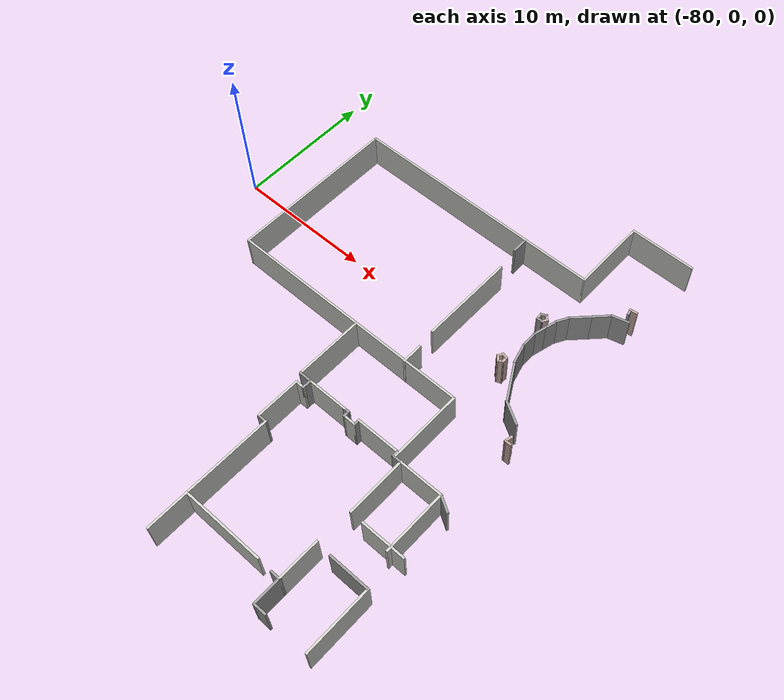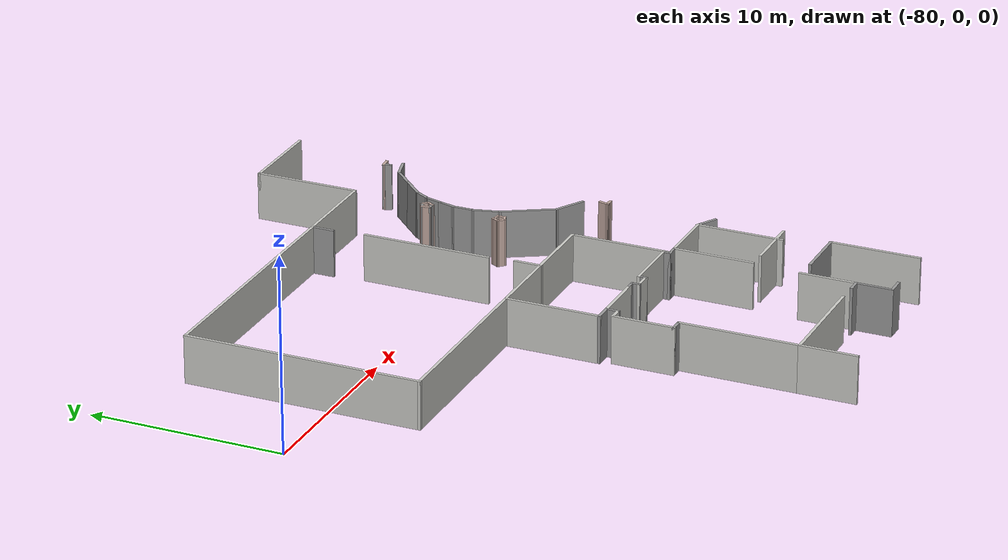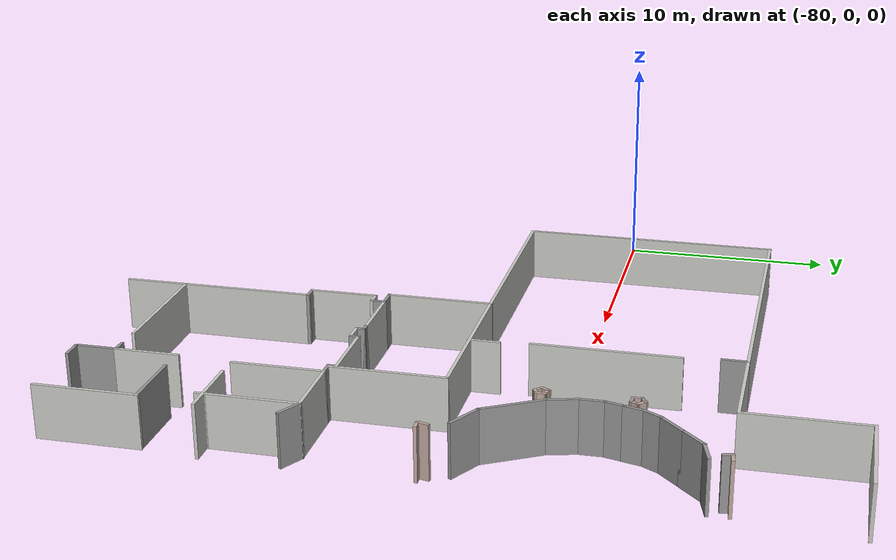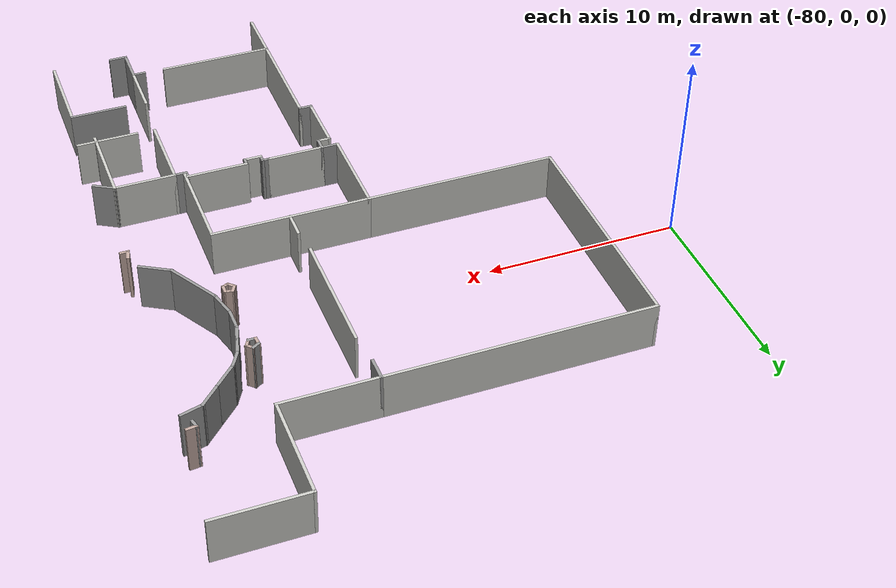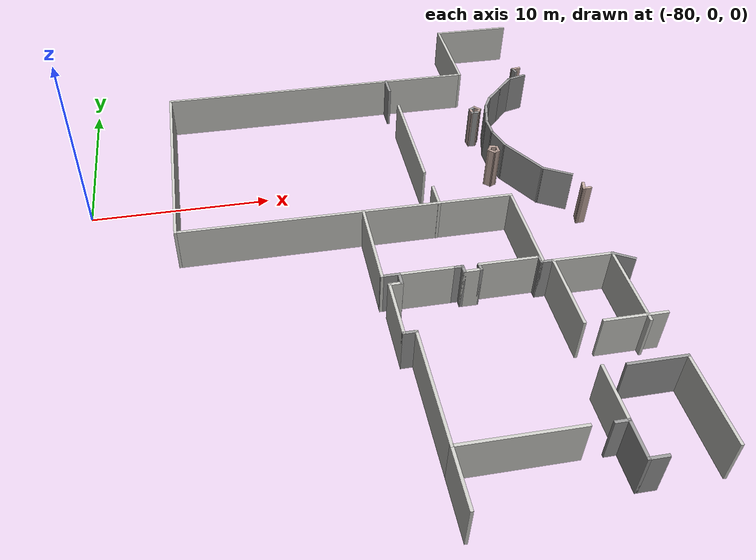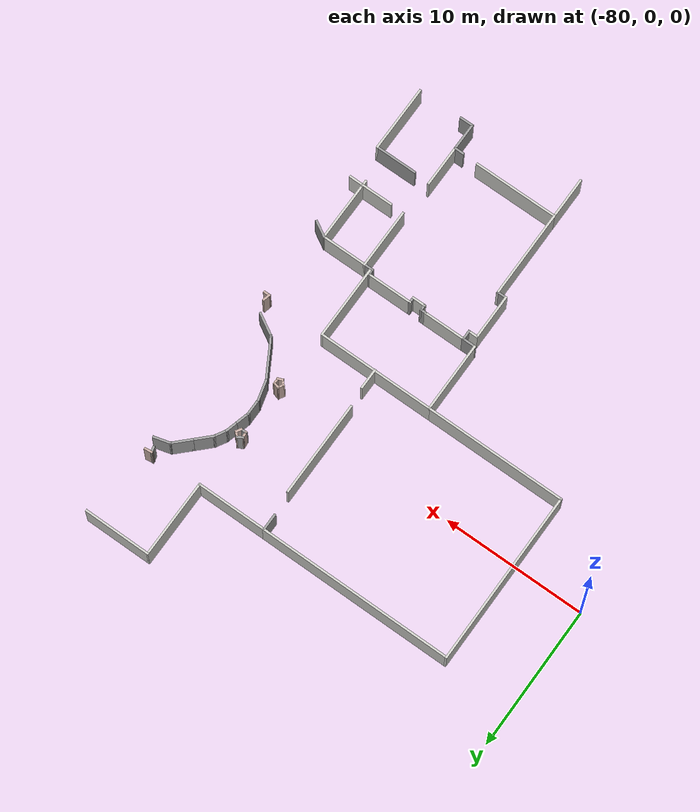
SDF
<sdf version="1.7">
 <model name="TD_n1">
  <pose>-37.6178 -12.8947 0 0 -0 0</pose>
  <link name="Wall_100">
   <collision name="Wall_100_Collision">
    <geometry><box><size>6 0.15 2.5</size></box></geometry>
    <pose>0 0 1.25 0 -0 0</pose>
   </collision>
   <visual name="Wall_100_Visual">
    <pose>0 0 1.25 0 -0 0</pose>
    <geometry><box><size>6 0.15 2.5</size></box></geometry>
    <material>
     <script><uri>file://media/materials/scripts/gazebo.material</uri><name>Gazebo/CeilingTiled</name></script>
     <ambient>1 1 1 1</ambient>
    </material>
    <meta><layer>0</layer></meta>
   </visual>
   <pose>-23.9178 -6.375 0 0 -0 0</pose>
  </link>
  <link name="Wall_102">
   <collision name="Wall_102_Collision">
    <geometry><box><size>0.75 0.15 2.5</size></box></geometry>
    <pose>0 0 1.25 0 -0 0</pose>
   </collision>
   <visual name="Wall_102_Visual">
    <pose>0 0 1.25 0 -0 0</pose>
    <geometry><box><size>0.75 0.15 2.5</size></box></geometry>
    <material>
     <script><uri>file://media/materials/scripts/gazebo.material</uri><name>Gazebo/Grey</name></script>
     <ambient>1 1 1 1</ambient>
    </material>
    <meta><layer>0</layer></meta>
   </visual>
   <pose>-19.5646 -6.4151 0 0 -0 0</pose>
  </link>
  <link name="Wall_103">
   <collision name="Wall_103_Collision">
    <geometry><box><size>2 0.15 2.5</size></box></geometry>
    <pose>0 0 1.25 0 -0 0</pose>
   </collision>
   <visual name="Wall_103_Visual">
    <pose>0 0 1.25 0 -0 0</pose>
    <geometry><box><size>2 0.15 2.5</size></box></geometry>
    <material>
     <script><uri>file://media/materials/scripts/gazebo.material</uri><name>Gazebo/Grey</name></script>
     <ambient>1 1 1 1</ambient>
    </material>
    <meta><layer>0</layer></meta>
   </visual>
   <pose>-19.2646 -7.3401 0 0 -0 -1.5708</pose>
  </link>
  <link name="Wall_104">
   <collision name="Wall_104_Collision">
    <geometry><box><size>1 0.15 2.5</size></box></geometry>
    <pose>0 0 1.25 0 -0 0</pose>
   </collision>
   <visual name="Wall_104_Visual">
    <pose>0 0 1.25 0 -0 0</pose>
    <geometry><box><size>1 0.15 2.5</size></box></geometry>
    <material>
     <script><uri>file://media/materials/scripts/gazebo.material</uri><name>Gazebo/Grey</name></script>
     <ambient>1 1 1 1</ambient>
    </material>
    <meta><layer>0</layer></meta>
   </visual>
   <pose>-18.8396 -8.2651 0 0 -0 0</pose>
  </link>
  <link name="Wall_118">
   <collision name="Wall_118_Collision">
    <geometry><box><size>6.25 0.15 2.5</size></box></geometry>
    <pose>0 0 1.25 0 -0 0</pose>
   </collision>
   <visual name="Wall_118_Visual">
    <pose>0 0 1.25 0 -0 0</pose>
    <geometry><box><size>6.25 0.15 2.5</size></box></geometry>
    <material>
     <script><uri>file://media/materials/scripts/gazebo.material</uri><name>Gazebo/CeilingTiled</name></script>
     <ambient>1 1 1 1</ambient>
    </material>
    <meta><layer>0</layer></meta>
   </visual>
   <pose>-26.8428 -3.325 0 0 -0 1.5708</pose>
  </link>
  <link name="Wall_119">
   <collision name="Wall_119_Collision">
    <geometry><box><size>0.75 0.15 2.5</size></box></geometry>
    <pose>0 0 1.25 0 -0 0</pose>
   </collision>
   <visual name="Wall_119_Visual">
    <pose>0 0 1.25 0 -0 0</pose>
    <geometry><box><size>0.75 0.15 2.5</size></box></geometry>
    <material>
     <script><uri>file://media/materials/scripts/gazebo.material</uri><name>Gazebo/Grey</name></script>
     <ambient>1 1 1 1</ambient>
    </material>
    <meta><layer>0</layer></meta>
   </visual>
   <pose>-27.1428 -0.275001 0 0 -0 3.14159</pose>
  </link>
  <link name="Wall_120">
   <collision name="Wall_120_Collision">
    <geometry><box><size>3.25 0.15 2.5</size></box></geometry>
    <pose>0 0 1.25 0 -0 0</pose>
   </collision>
   <visual name="Wall_120_Visual">
    <pose>0 0 1.25 0 -0 0</pose>
    <geometry><box><size>3.25 0.15 2.5</size></box></geometry>
    <material>
     <script><uri>file://media/materials/scripts/gazebo.material</uri><name>Gazebo/CeilingTiled</name></script>
     <ambient>1 1 1 1</ambient>
    </material>
    <meta><layer>0</layer></meta>
   </visual>
   <pose>-27.4428 1.275 0 0 -0 1.5708</pose>
  </link>
  <link name="Wall_121">
   <collision name="Wall_121_Collision">
    <geometry><box><size>0.75 0.15 2.5</size></box></geometry>
    <pose>0 0 1.25 0 -0 0</pose>
   </collision>
   <visual name="Wall_121_Visual">
    <pose>0 0 1.25 0 -0 0</pose>
    <geometry><box><size>0.75 0.15 2.5</size></box></geometry>
    <material>
     <script><uri>file://media/materials/scripts/gazebo.material</uri><name>Gazebo/CeilingTiled</name></script>
     <ambient>1 1 1 1</ambient>
    </material>
    <meta><layer>0</layer></meta>
   </visual>
   <pose>-27.1428 2.825 0 0 -0 0</pose>
  </link>
  <link name="Wall_122">
   <collision name="Wall_122_Collision">
    <geometry><box><size>0.75 0.15 2.5</size></box></geometry>
    <pose>0 0 1.25 0 -0 0</pose>
   </collision>
   <visual name="Wall_122_Visual">
    <pose>0 0 1.25 0 -0 0</pose>
    <geometry><box><size>0.75 0.15 2.5</size></box></geometry>
    <material>
     <script><uri>file://media/materials/scripts/gazebo.material</uri><name>Gazebo/Grey</name></script>
     <ambient>1 1 1 1</ambient>
    </material>
    <meta><layer>0</layer></meta>
   </visual>
   <pose>-26.8428 3.125 0 0 -0 1.5708</pose>
  </link>
  <link name="Wall_123">
   <collision name="Wall_123_Collision">
    <geometry><box><size>3 0.15 2.5</size></box></geometry>
    <pose>0 0 1.25 0 -0 0</pose>
   </collision>
   <visual name="Wall_123_Visual">
    <pose>0 0 1.25 0 -0 0</pose>
    <geometry><box><size>3 0.15 2.5</size></box></geometry>
    <material>
     <script><uri>file://media/materials/scripts/gazebo.material</uri><name>Gazebo/CeilingTiled</name></script>
     <ambient>1 1 1 1</ambient>
    </material>
    <meta><layer>0</layer></meta>
   </visual>
   <pose>-25.4178 3.425 0 0 -0 0</pose>
  </link>
  <link name="Wall_125">
   <collision name="Wall_125_Collision">
    <geometry><box><size>0.5 0.15 2.5</size></box></geometry>
    <pose>0 0 1.25 0 -0 0</pose>
   </collision>
   <visual name="Wall_125_Visual">
    <pose>0 0 1.25 0 -0 0</pose>
    <geometry><box><size>0.5 0.15 2.5</size></box></geometry>
    <material>
     <script><uri>file://media/materials/scripts/gazebo.material</uri><name>Gazebo/Grey</name></script>
     <ambient>1 1 1 1</ambient>
    </material>
    <meta><layer>0</layer></meta>
   </visual>
   <pose>-23.8178 3.425 0 0 -0 0</pose>
  </link>
  <link name="Wall_126">
   <collision name="Wall_126_Collision">
    <geometry><box><size>0.5 0.15 2.5</size></box></geometry>
    <pose>0 0 1.25 0 -0 0</pose>
   </collision>
   <visual name="Wall_126_Visual">
    <pose>0 0 1.25 0 -0 0</pose>
    <geometry><box><size>0.5 0.15 2.5</size></box></geometry>
    <material>
     <script><uri>file://media/materials/scripts/gazebo.material</uri><name>Gazebo/Grey</name></script>
     <ambient>1 1 1 1</ambient>
    </material>
    <meta><layer>0</layer></meta>
   </visual>
   <pose>-23.6428 3.25 0 0 -0 -1.5708</pose>
  </link>
  <link name="Wall_127">
   <collision name="Wall_127_Collision">
    <geometry><box><size>1 0.15 2.5</size></box></geometry>
    <pose>0 0 1.25 0 -0 0</pose>
   </collision>
   <visual name="Wall_127_Visual">
    <pose>0 0 1.25 0 -0 0</pose>
    <geometry><box><size>1 0.15 2.5</size></box></geometry>
    <material>
     <script><uri>file://media/materials/scripts/gazebo.material</uri><name>Gazebo/CeilingTiled</name></script>
     <ambient>1 1 1 1</ambient>
    </material>
    <meta><layer>0</layer></meta>
   </visual>
   <pose>-23.2178 3.075 0 0 -0 0</pose>
  </link>
  <link name="Wall_128">
   <collision name="Wall_128_Collision">
    <geometry><box><size>0.5 0.15 2.5</size></box></geometry>
    <pose>0 0 1.25 0 -0 0</pose>
   </collision>
   <visual name="Wall_128_Visual">
    <pose>0 0 1.25 0 -0 0</pose>
    <geometry><box><size>0.5 0.15 2.5</size></box></geometry>
    <material>
     <script><uri>file://media/materials/scripts/gazebo.material</uri><name>Gazebo/Grey</name></script>
     <ambient>1 1 1 1</ambient>
    </material>
    <meta><layer>0</layer></meta>
   </visual>
   <pose>-22.7928 3.25 0 0 -0 1.5708</pose>
  </link>
  <link name="Wall_129">
   <collision name="Wall_129_Collision">
    <geometry><box><size>3.25 0.15 2.5</size></box></geometry>
    <pose>0 0 1.25 0 -0 0</pose>
   </collision>
   <visual name="Wall_129_Visual">
    <pose>0 0 1.25 0 -0 0</pose>
    <geometry><box><size>3.25 0.15 2.5</size></box></geometry>
    <material>
     <script><uri>file://media/materials/scripts/gazebo.material</uri><name>Gazebo/CeilingTiled</name></script>
     <ambient>1 1 1 1</ambient>
    </material>
    <meta><layer>0</layer></meta>
   </visual>
   <pose>-21.2428 3.425 0 0 -0 0</pose>
  </link>
  <link name="Wall_130">
   <collision name="Wall_130_Collision">
    <geometry><box><size>0.5 0.15 2.5</size></box></geometry>
    <pose>0 0 1.25 0 -0 0</pose>
   </collision>
   <visual name="Wall_130_Visual">
    <pose>0 0 1.25 0 -0 0</pose>
    <geometry><box><size>0.5 0.15 2.5</size></box></geometry>
    <material>
     <script><uri>file://media/materials/scripts/gazebo.material</uri><name>Gazebo/Grey</name></script>
     <ambient>1 1 1 1</ambient>
    </material>
    <meta><layer>0</layer></meta>
   </visual>
   <pose>-19.6928 3.25 0 0 -0 -1.5708</pose>
  </link>
  <link name="Wall_131">
   <collision name="Wall_131_Collision">
    <geometry><box><size>0.75 0.15 2.5</size></box></geometry>
    <pose>0 0 1.25 0 -0 0</pose>
   </collision>
   <visual name="Wall_131_Visual">
    <pose>0 0 1.25 0 -0 0</pose>
    <geometry><box><size>0.75 0.15 2.5</size></box></geometry>
    <material>
     <script><uri>file://media/materials/scripts/gazebo.material</uri><name>Gazebo/Grey</name></script>
     <ambient>1 1 1 1</ambient>
    </material>
    <meta><layer>0</layer></meta>
   </visual>
   <pose>-19.3928 3.075 0 0 -0 0</pose>
  </link>
  <link name="Wall_132">
   <collision name="Wall_132_Collision">
    <geometry><box><size>4.25 0.15 2.5</size></box></geometry>
    <pose>0 0 1.25 0 -0 0</pose>
   </collision>
   <visual name="Wall_132_Visual">
    <pose>0 0 1.25 0 -0 0</pose>
    <geometry><box><size>4.25 0.15 2.5</size></box></geometry>
    <material>
     <script><uri>file://media/materials/scripts/gazebo.material</uri><name>Gazebo/CeilingTiled</name></script>
     <ambient>1 1 1 1</ambient>
    </material>
    <meta><layer>0</layer></meta>
   </visual>
   <pose>-19.0928 1.025 0 0 -0 -1.5708</pose>
  </link>
  <link name="Wall_134">
   <collision name="Wall_134_Collision">
    <geometry><box><size>3.25 0.15 2.5</size></box></geometry>
    <pose>0 0 1.25 0 -0 0</pose>
   </collision>
   <visual name="Wall_134_Visual">
    <pose>0 0 1.25 0 -0 0</pose>
    <geometry><box><size>3.25 0.15 2.5</size></box></geometry>
    <material>
     <script><uri>file://media/materials/scripts/gazebo.material</uri><name>Gazebo/CeilingTiled</name></script>
     <ambient>1 1 1 1</ambient>
    </material>
    <meta><layer>0</layer></meta>
   </visual>
   <pose>-17.5428 3.075 0 0 -0 0</pose>
  </link>
  <link name="Wall_135">
   <collision name="Wall_135_Collision">
    <geometry><box><size>1.25 0.15 2.5</size></box></geometry>
    <pose>0 0 1.25 0 -0 0</pose>
   </collision>
   <visual name="Wall_135_Visual">
    <pose>0 0 1.25 0 -0 0</pose>
    <geometry><box><size>1.25 0.15 2.5</size></box></geometry>
    <material>
     <script><uri>file://media/materials/scripts/gazebo.material</uri><name>Gazebo/Grey</name></script>
     <ambient>1 1 1 1</ambient>
    </material>
    <meta><layer>0</layer></meta>
   </visual>
   <pose>-15.5165 2.8 0 0 -0 -0.523599</pose>
  </link>
  <link name="Wall_137">
   <collision name="Wall_137_Collision">
    <geometry><box><size>3.25 0.15 2.5</size></box></geometry>
    <pose>0 0 1.25 0 -0 0</pose>
   </collision>
   <visual name="Wall_137_Visual">
    <pose>0 0 1.25 0 -0 0</pose>
    <geometry><box><size>3.25 0.15 2.5</size></box></geometry>
    <material>
     <script><uri>file://media/materials/scripts/gazebo.material</uri><name>Gazebo/CeilingTiled</name></script>
     <ambient>1 1 1 1</ambient>
    </material>
    <meta><layer>0</layer></meta>
   </visual>
   <pose>-16.5902 -1.075 0 0 -0 3.14159</pose>
  </link>
  <link name="Wall_139">
   <collision name="Wall_139_Collision">
    <geometry><box><size>4.25 0.15 2.5</size></box></geometry>
    <pose>0 0 1.25 0 -0 0</pose>
   </collision>
   <visual name="Wall_139_Visual">
    <pose>0 0 1.25 0 -0 0</pose>
    <geometry><box><size>4.25 0.15 2.5</size></box></geometry>
    <material>
     <script><uri>file://media/materials/scripts/gazebo.material</uri><name>Gazebo/CeilingTiled</name></script>
     <ambient>1 1 1 1</ambient>
    </material>
    <meta><layer>0</layer></meta>
   </visual>
   <pose>-15.9928 1.025 0 0 -0 -1.5708</pose>
  </link>
  <link name="Wall_140">
   <collision name="Wall_140_Collision">
    <geometry><box><size>0.5 0.15 2.5</size></box></geometry>
    <pose>0 0 1.25 0 -0 0</pose>
   </collision>
   <visual name="Wall_140_Visual">
    <pose>0 0 1.25 0 -0 0</pose>
    <geometry><box><size>0.5 0.15 2.5</size></box></geometry>
    <material>
     <script><uri>file://media/materials/scripts/gazebo.material</uri><name>Gazebo/CeilingTiled</name></script>
     <ambient>1 1 1 1</ambient>
    </material>
    <meta><layer>0</layer></meta>
   </visual>
   <pose>-15.9928 -1.2 0 0 -0 -1.5708</pose>
  </link>
  <link name="Wall_142">
   <collision name="Wall_142_Collision">
    <geometry><box><size>3 0.15 2.5</size></box></geometry>
    <pose>0 0 1.25 0 -0 0</pose>
   </collision>
   <visual name="Wall_142_Visual">
    <pose>0 0 1.25 0 -0 0</pose>
    <geometry><box><size>3 0.15 2.5</size></box></geometry>
    <material>
     <script><uri>file://media/materials/scripts/gazebo.material</uri><name>Gazebo/CeilingTiled</name></script>
     <ambient>1 1 1 1</ambient>
    </material>
    <meta><layer>0</layer></meta>
   </visual>
   <pose>-19.2646 -4.9901 0 0 -0 1.5708</pose>
  </link>
  <link name="Wall_145">
   <collision name="Wall_145_Collision">
    <geometry><box><size>3 0.15 2.5</size></box></geometry>
    <pose>0 0 1.25 0 -0 0</pose>
   </collision>
   <visual name="Wall_145_Visual">
    <pose>0 0 1.25 0 -0 0</pose>
    <geometry><box><size>3 0.15 2.5</size></box></geometry>
    <material>
     <script><uri>file://media/materials/scripts/gazebo.material</uri><name>Gazebo/Grey</name></script>
     <ambient>1 1 1 1</ambient>
    </material>
    <meta><layer>0</layer></meta>
   </visual>
   <pose>-16.6986 -3.64843 0 0 -0 0</pose>
  </link>
  <link name="Wall_146">
   <collision name="Wall_146_Collision">
    <geometry><box><size>4.75 0.15 2.5</size></box></geometry>
    <pose>0 0 1.25 0 -0 0</pose>
   </collision>
   <visual name="Wall_146_Visual">
    <pose>0 0 1.25 0 -0 0</pose>
    <geometry><box><size>4.75 0.15 2.5</size></box></geometry>
    <material>
     <script><uri>file://media/materials/scripts/gazebo.material</uri><name>Gazebo/CeilingTiled</name></script>
     <ambient>1 1 1 1</ambient>
    </material>
    <meta><layer>0</layer></meta>
   </visual>
   <pose>-15.2736 -5.94843 0 0 -0 -1.5708</pose>
  </link>
  <link name="Wall_165">
   <collision name="Wall_165_Collision">
    <geometry><box><size>1 0.15 2.5</size></box></geometry>
    <pose>0 0 1.25 0 -0 0</pose>
   </collision>
   <visual name="Wall_165_Visual">
    <pose>0 0 1.25 0 -0 0</pose>
    <geometry><box><size>1 0.15 2.5</size></box></geometry>
    <material>
     <script><uri>file://media/materials/scripts/gazebo.material</uri><name>Gazebo/Grey</name></script>
     <ambient>1 1 1 1</ambient>
    </material>
    <meta><layer>0</layer></meta>
   </visual>
   <pose>-27.2678 3.425 0 0 -0 3.14159</pose>
  </link>
  <link name="Wall_166">
   <collision name="Wall_166_Collision">
    <geometry><box><size>5 0.15 2.5</size></box></geometry>
    <pose>0 0 1.25 0 -0 0</pose>
   </collision>
   <visual name="Wall_166_Visual">
    <pose>0 0 1.25 0 -0 0</pose>
    <geometry><box><size>5 0.15 2.5</size></box></geometry>
    <material>
     <script><uri>file://media/materials/scripts/gazebo.material</uri><name>Gazebo/CeilingTiled</name></script>
     <ambient>1 1 1 1</ambient>
    </material>
    <meta><layer>0</layer></meta>
   </visual>
   <pose>-27.6928 5.85 0 0 -0 1.5708</pose>
  </link>
  <link name="Wall_167">
   <collision name="Wall_167_Collision">
    <geometry><box><size>8.25 0.15 2.5</size></box></geometry>
    <pose>0 0 1.25 0 -0 0</pose>
   </collision>
   <visual name="Wall_167_Visual">
    <pose>0 0 1.25 0 -0 0</pose>
    <geometry><box><size>8.25 0.15 2.5</size></box></geometry>
    <material>
     <script><uri>file://media/materials/scripts/gazebo.material</uri><name>Gazebo/CeilingTiled</name></script>
     <ambient>1 1 1 1</ambient>
    </material>
    <meta><layer>0</layer></meta>
   </visual>
   <pose>-23.6428 8.275 0 0 -0 0</pose>
  </link>
  <link name="Wall_168">
   <collision name="Wall_168_Collision">
    <geometry><box><size>5.25 0.15 2.5</size></box></geometry>
    <pose>0 0 1.25 0 -0 0</pose>
   </collision>
   <visual name="Wall_168_Visual">
    <pose>0 0 1.25 0 -0 0</pose>
    <geometry><box><size>5.25 0.15 2.5</size></box></geometry>
    <material>
     <script><uri>file://media/materials/scripts/gazebo.material</uri><name>Gazebo/CeilingTiled</name></script>
     <ambient>1 1 1 1</ambient>
    </material>
    <meta><layer>0</layer></meta>
   </visual>
   <pose>-19.5928 5.725 0 0 -0 -1.5708</pose>
  </link>
  <link name="Wall_170">
   <collision name="Wall_170_Collision">
    <geometry><box><size>10 0.15 2.5</size></box></geometry>
    <pose>0 0 1.25 0 -0 0</pose>
   </collision>
   <visual name="Wall_170_Visual">
    <pose>0 0 1.25 0 -0 0</pose>
    <geometry><box><size>10 0.15 2.5</size></box></geometry>
    <material>
     <script><uri>file://media/materials/scripts/gazebo.material</uri><name>Gazebo/CeilingTiled</name></script>
     <ambient>1 1 1 1</ambient>
    </material>
    <meta><layer>0</layer></meta>
   </visual>
   <pose>-32.6178 8.275 0 0 -0 3.14159</pose>
  </link>
  <link name="Wall_171">
   <collision name="Wall_171_Collision">
    <geometry><box><size>12.25 0.15 2.5</size></box></geometry>
    <pose>0 0 1.25 0 -0 0</pose>
   </collision>
   <visual name="Wall_171_Visual">
    <pose>0 0 1.25 0 -0 0</pose>
    <geometry><box><size>12.25 0.15 2.5</size></box></geometry>
    <material>
     <script><uri>file://media/materials/scripts/gazebo.material</uri><name>Gazebo/CeilingTiled</name></script>
     <ambient>1 1 1 1</ambient>
    </material>
    <meta><layer>0</layer></meta>
   </visual>
   <pose>-37.5428 14.325 0 0 -0 1.5708</pose>
  </link>
  <link name="Wall_172">
   <collision name="Wall_172_Collision">
    <geometry><box><size>13.75 0.15 2.5</size></box></geometry>
    <pose>0 0 1.25 0 -0 0</pose>
   </collision>
   <visual name="Wall_172_Visual">
    <pose>0 0 1.25 0 -0 0</pose>
    <geometry><box><size>13.75 0.15 2.5</size></box></geometry>
    <material>
     <script><uri>file://media/materials/scripts/gazebo.material</uri><name>Gazebo/CeilingTiled</name></script>
     <ambient>1 1 1 1</ambient>
    </material>
    <meta><layer>0</layer></meta>
   </visual>
   <pose>-30.7428 20.375 0 0 -0 0</pose>
  </link>
  <link name="Wall_173">
   <collision name="Wall_173_Collision">
    <geometry><box><size>1.25 0.15 2.5</size></box></geometry>
    <pose>0 0 1.25 0 -0 0</pose>
   </collision>
   <visual name="Wall_173_Visual">
    <pose>0 0 1.25 0 -0 0</pose>
    <geometry><box><size>1.25 0.15 2.5</size></box></geometry>
    <material>
     <script><uri>file://media/materials/scripts/gazebo.material</uri><name>Gazebo/Grey</name></script>
     <ambient>1 1 1 1</ambient>
    </material>
    <meta><layer>0</layer></meta>
   </visual>
   <pose>-23.9428 19.825 0 0 -0 -1.5708</pose>
  </link>
  <link name="Wall_175">
   <collision name="Wall_175_Collision">
    <geometry><box><size>6.75 0.15 2.5</size></box></geometry>
    <pose>0 0 1.25 0 -0 0</pose>
   </collision>
   <visual name="Wall_175_Visual">
    <pose>0 0 1.25 0 -0 0</pose>
    <geometry><box><size>6.75 0.15 2.5</size></box></geometry>
    <material>
     <script><uri>file://media/materials/scripts/gazebo.material</uri><name>Gazebo/CeilingTiled</name></script>
     <ambient>1 1 1 1</ambient>
    </material>
    <meta><layer>0</layer></meta>
   </visual>
   <pose>-23.7341 14.2836 0 0 -0 -1.5708</pose>
  </link>
  <link name="Wall_177">
   <collision name="Wall_177_Collision">
    <geometry><box><size>1.5 0.15 2.5</size></box></geometry>
    <pose>0 0 1.25 0 -0 0</pose>
   </collision>
   <visual name="Wall_177_Visual">
    <pose>0 0 1.25 0 -0 0</pose>
    <geometry><box><size>1.5 0.15 2.5</size></box></geometry>
    <material>
     <script><uri>file://media/materials/scripts/gazebo.material</uri><name>Gazebo/CeilingTiled</name></script>
     <ambient>1 1 1 1</ambient>
    </material>
    <meta><layer>0</layer></meta>
   </visual>
   <pose>-23.5732 8.92586 0 0 -0 1.5708</pose>
  </link>
  <link name="Wall_179">
   <collision name="Wall_179_Collision">
    <geometry><box><size>5 0.15 2.5</size></box></geometry>
    <pose>0 0 1.25 0 -0 0</pose>
   </collision>
   <visual name="Wall_179_Visual">
    <pose>0 0 1.25 0 -0 0</pose>
    <geometry><box><size>5 0.15 2.5</size></box></geometry>
    <material>
     <script><uri>file://media/materials/scripts/gazebo.material</uri><name>Gazebo/CeilingTiled</name></script>
     <ambient>1 1 1 1</ambient>
    </material>
    <meta><layer>0</layer></meta>
   </visual>
   <pose>-21.5178 20.375 0 0 -0 0</pose>
  </link>
  <link name="Wall_180">
   <collision name="Wall_180_Collision">
    <geometry><box><size>5.5 0.15 2.5</size></box></geometry>
    <pose>0 0 1.25 0 -0 0</pose>
   </collision>
   <visual name="Wall_180_Visual">
    <pose>0 0 1.25 0 -0 0</pose>
    <geometry><box><size>5.5 0.15 2.5</size></box></geometry>
    <material>
     <script><uri>file://media/materials/scripts/gazebo.material</uri><name>Gazebo/CeilingTiled</name></script>
     <ambient>1 1 1 1</ambient>
    </material>
    <meta><layer>0</layer></meta>
   </visual>
   <pose>-19.0928 23.05 0 0 -0 1.5708</pose>
  </link>
  <link name="Wall_181">
   <collision name="Wall_181_Collision">
    <geometry><box><size>4.75 0.15 2.5</size></box></geometry>
    <pose>0 0 1.25 0 -0 0</pose>
   </collision>
   <visual name="Wall_181_Visual">
    <pose>0 0 1.25 0 -0 0</pose>
    <geometry><box><size>4.75 0.15 2.5</size></box></geometry>
    <material>
     <script><uri>file://media/materials/scripts/gazebo.material</uri><name>Gazebo/CeilingTiled</name></script>
     <ambient>1 1 1 1</ambient>
    </material>
    <meta><layer>0</layer></meta>
   </visual>
   <pose>-16.7928 25.725 0 0 -0 0</pose>
  </link>
  <link name="Wall_211">
   <collision name="Wall_211_Collision">
    <geometry><box><size>1 0.15 2.5</size></box></geometry>
    <pose>0 0 1.25 0 -0 0</pose>
   </collision>
   <visual name="Wall_211_Visual">
    <pose>0 0 1.25 0 -0 0</pose>
    <geometry><box><size>1 0.15 2.5</size></box></geometry>
    <material>
     <script><uri>file://media/materials/scripts/gazebo.material</uri><name>Gazebo/Grey</name></script>
     <ambient>1 1 1 1</ambient>
    </material>
    <meta><layer>0</layer></meta>
   </visual>
   <pose>-18.7625 15.4471 0 0 -0 1.309</pose>
  </link>
  <link name="Wall_212">
   <collision name="Wall_212_Collision">
    <geometry><box><size>1 0.15 2.5</size></box></geometry>
    <pose>0 0 1.25 0 -0 0</pose>
   </collision>
   <visual name="Wall_212_Visual">
    <pose>0 0 1.25 0 -0 0</pose>
    <geometry><box><size>1 0.15 2.5</size></box></geometry>
    <material>
     <script><uri>file://media/materials/scripts/gazebo.material</uri><name>Gazebo/Grey</name></script>
     <ambient>1 1 1 1</ambient>
    </material>
    <meta><layer>0</layer></meta>
   </visual>
   <pose>-18.5425 16.2681 0 0 -0 1.309</pose>
  </link>
  <link name="Wall_213">
   <collision name="Wall_213_Collision">
    <geometry><box><size>1 0.15 2.5</size></box></geometry>
    <pose>0 0 1.25 0 -0 0</pose>
   </collision>
   <visual name="Wall_213_Visual">
    <pose>0 0 1.25 0 -0 0</pose>
    <geometry><box><size>1 0.15 2.5</size></box></geometry>
    <material>
     <script><uri>file://media/materials/scripts/gazebo.material</uri><name>Gazebo/Grey</name></script>
     <ambient>1 1 1 1</ambient>
    </material>
    <meta><layer>0</layer></meta>
   </visual>
   <pose>-18.22 17.0467 0 0 -0 1.0472</pose>
  </link>
  <link name="Wall_214">
   <collision name="Wall_214_Collision">
    <geometry><box><size>1.5 0.15 2.5</size></box></geometry>
    <pose>0 0 1.25 0 -0 0</pose>
   </collision>
   <visual name="Wall_214_Visual">
    <pose>0 0 1.25 0 -0 0</pose>
    <geometry><box><size>1.5 0.15 2.5</size></box></geometry>
    <material>
     <script><uri>file://media/materials/scripts/gazebo.material</uri><name>Gazebo/Grey</name></script>
     <ambient>1 1 1 1</ambient>
    </material>
    <meta><layer>0</layer></meta>
   </visual>
   <pose>-17.5302 17.8921 0 0 -0 0.785398</pose>
  </link>
  <link name="Wall_215">
   <collision name="Wall_215_Collision">
    <geometry><box><size>1.5 0.15 2.5</size></box></geometry>
    <pose>0 0 1.25 0 -0 0</pose>
   </collision>
   <visual name="Wall_215_Visual">
    <pose>0 0 1.25 0 -0 0</pose>
    <geometry><box><size>1.5 0.15 2.5</size></box></geometry>
    <material>
     <script><uri>file://media/materials/scripts/gazebo.material</uri><name>Gazebo/Grey</name></script>
     <ambient>1 1 1 1</ambient>
    </material>
    <meta><layer>0</layer></meta>
   </visual>
   <pose>-16.5756 18.8467 0 0 -0 0.785398</pose>
  </link>
  <link name="Wall_216">
   <collision name="Wall_216_Collision">
    <geometry><box><size>1.25 0.15 2.5</size></box></geometry>
    <pose>0 0 1.25 0 -0 0</pose>
   </collision>
   <visual name="Wall_216_Visual">
    <pose>0 0 1.25 0 -0 0</pose>
    <geometry><box><size>1.25 0.15 2.5</size></box></geometry>
    <material>
     <script><uri>file://media/materials/scripts/gazebo.material</uri><name>Gazebo/Grey</name></script>
     <ambient>1 1 1 1</ambient>
    </material>
    <meta><layer>0</layer></meta>
   </visual>
   <pose>-15.5671 19.4663 0 0 -0 0.261799</pose>
  </link>
  <link name="Wall_234">
   <collision name="Wall_234_Collision">
    <geometry><box><size>1.75 0.15 2.5</size></box></geometry>
    <pose>0 0 1.25 0 -0 0</pose>
   </collision>
   <visual name="Wall_234_Visual">
    <pose>0 0 1.25 0 -0 0</pose>
    <geometry><box><size>1.75 0.15 2.5</size></box></geometry>
    <material>
     <script><uri>file://media/materials/scripts/gazebo.material</uri><name>Gazebo/Grey</name></script>
     <ambient>1 1 1 1</ambient>
    </material>
    <meta><layer>0</layer></meta>
   </visual>
   <pose>-16.3967 9.7973 0 0 -0 2.61799</pose>
  </link>
  <link name="Wall_235">
   <collision name="Wall_235_Collision">
    <geometry><box><size>3 0.15 2.5</size></box></geometry>
    <pose>0 0 1.25 0 -0 0</pose>
   </collision>
   <visual name="Wall_235_Visual">
    <pose>0 0 1.25 0 -0 0</pose>
    <geometry><box><size>3 0.15 2.5</size></box></geometry>
    <material>
     <script><uri>file://media/materials/scripts/gazebo.material</uri><name>Gazebo/Grey</name></script>
     <ambient>1 1 1 1</ambient>
    </material>
    <meta><layer>0</layer></meta>
   </visual>
   <pose>-17.8021 11.4314 0 0 -0 2.0944</pose>
  </link>
  <link name="Wall_237">
   <collision name="Wall_237_Collision">
    <geometry><box><size>1.5 0.15 2.5</size></box></geometry>
    <pose>0 0 1.25 0 -0 0</pose>
   </collision>
   <visual name="Wall_237_Visual">
    <pose>0 0 1.25 0 -0 0</pose>
    <geometry><box><size>1.5 0.15 2.5</size></box></geometry>
    <material>
     <script><uri>file://media/materials/scripts/gazebo.material</uri><name>Gazebo/Grey</name></script>
     <ambient>1 1 1 1</ambient>
    </material>
    <meta><layer>0</layer></meta>
   </visual>
   <pose>-18.6893 13.3175 0 0 -0 1.8326</pose>
  </link>
  <link name="Wall_238">
   <collision name="Wall_238_Collision">
    <geometry><box><size>1.21714 0.15 2.5</size></box></geometry>
    <pose>0 0 1.25 0 -0 0</pose>
   </collision>
   <visual name="Wall_238_Visual">
    <pose>0 0 1.25 0 -0 0</pose>
    <geometry><box><size>1.21714 0.15 2.5</size></box></geometry>
    <material>
     <script><uri>file://media/materials/scripts/gazebo.material</uri><name>Gazebo/Grey</name></script>
     <ambient>1 1 1 1</ambient>
    </material>
    <meta><layer>0</layer></meta>
   </visual>
   <pose>-18.8682 14.503 0 0 -0 1.5788</pose>
  </link>
  <link name="Wall_240">
   <collision name="Wall_240_Collision">
    <geometry><box><size>0.5 0.15 2.5</size></box></geometry>
    <pose>0 0 1.25 0 -0 0</pose>
   </collision>
   <visual name="Wall_240_Visual">
    <pose>0 0 1.25 0 -0 0</pose>
    <geometry><box><size>0.5 0.15 2.5</size></box></geometry>
    <material>
     <script><uri>file://media/materials/scripts/gazebo.material</uri><name>Gazebo/Grey</name></script>
     <ambient>0.760784 0.662745 0.627451 1</ambient>
    </material>
    <meta><layer>0</layer></meta>
   </visual>
   <pose>-19.438 12.1844 0 0 -0 2.35619</pose>
  </link>
  <link name="Wall_241">
   <collision name="Wall_241_Collision">
    <geometry><box><size>0.5 0.15 2.5</size></box></geometry>
    <pose>0 0 1.25 0 -0 0</pose>
   </collision>
   <visual name="Wall_241_Visual">
    <pose>0 0 1.25 0 -0 0</pose>
    <geometry><box><size>0.5 0.15 2.5</size></box></geometry>
    <material>
     <script><uri>file://media/materials/scripts/gazebo.material</uri><name>Gazebo/Grey</name></script>
     <ambient>0.760784 0.662745 0.627451 1</ambient>
    </material>
    <meta><layer>0</layer></meta>
   </visual>
   <pose>-19.4742 12.4597 0 0 -0 1.0472</pose>
  </link>
  <link name="Wall_242">
   <collision name="Wall_242_Collision">
    <geometry><box><size>0.5 0.15 2.5</size></box></geometry>
    <pose>0 0 1.25 0 -0 0</pose>
   </collision>
   <visual name="Wall_242_Visual">
    <pose>0 0 1.25 0 -0 0</pose>
    <geometry><box><size>0.5 0.15 2.5</size></box></geometry>
    <material>
     <script><uri>file://media/materials/scripts/gazebo.material</uri><name>Gazebo/Grey</name></script>
     <ambient>0.760784 0.662745 0.627451 1</ambient>
    </material>
    <meta><layer>0</layer></meta>
   </visual>
   <pose>-19.2177 12.5659 0 0 -0 -0.261799</pose>
  </link>
  <link name="Wall_243">
   <collision name="Wall_243_Collision">
    <geometry><box><size>0.5 0.15 2.5</size></box></geometry>
    <pose>0 0 1.25 0 -0 0</pose>
   </collision>
   <visual name="Wall_243_Visual">
    <pose>0 0 1.25 0 -0 0</pose>
    <geometry><box><size>0.5 0.15 2.5</size></box></geometry>
    <material>
     <script><uri>file://media/materials/scripts/gazebo.material</uri><name>Gazebo/Grey</name></script>
     <ambient>0.760784 0.662745 0.627451 1</ambient>
    </material>
    <meta><layer>0</layer></meta>
   </visual>
   <pose>-19.0486 12.3456 0 0 -0 -1.5708</pose>
  </link>
  <link name="Wall_244">
   <collision name="Wall_244_Collision">
    <geometry><box><size>0.437469 0.15 2.5</size></box></geometry>
    <pose>0 0 1.25 0 -0 0</pose>
   </collision>
   <visual name="Wall_244_Visual">
    <pose>0 0 1.25 0 -0 0</pose>
    <geometry><box><size>0.437469 0.15 2.5</size></box></geometry>
    <material>
     <script><uri>file://media/materials/scripts/gazebo.material</uri><name>Gazebo/Grey</name></script>
     <ambient>0.760784 0.662745 0.627451 1</ambient>
    </material>
    <meta><layer>0</layer></meta>
   </visual>
   <pose>-19.1814 12.1156 0 0 -0 -2.74889</pose>
  </link>
  <link name="Wall_246">
   <collision name="Wall_246_Collision">
    <geometry><box><size>0.5 0.15 2.5</size></box></geometry>
    <pose>0 0 1.25 0 -0 0</pose>
   </collision>
   <visual name="Wall_246_Visual">
    <pose>0 0 1.25 0 -0 0</pose>
    <geometry><box><size>0.5 0.15 2.5</size></box></geometry>
    <material>
     <script><uri>file://media/materials/scripts/gazebo.material</uri><name>Gazebo/Grey</name></script>
     <ambient>1 1 1 1</ambient>
    </material>
    <meta><layer>0</layer></meta>
   </visual>
   <pose>-19.3407 16.5381 0 0 -0 0.523599</pose>
  </link>
  <link name="Wall_247">
   <collision name="Wall_247_Collision">
    <geometry><box><size>0.5 0.15 2.5</size></box></geometry>
    <pose>0 0 1.25 0 -0 0</pose>
   </collision>
   <visual name="Wall_247_Visual">
    <pose>0 0 1.25 0 -0 0</pose>
    <geometry><box><size>0.5 0.15 2.5</size></box></geometry>
    <material>
     <script><uri>file://media/materials/scripts/gazebo.material</uri><name>Gazebo/Grey</name></script>
     <ambient>0.760784 0.662745 0.627451 1</ambient>
    </material>
    <meta><layer>0</layer></meta>
   </visual>
   <pose>-19.0654 16.5019 0 0 -0 -0.785398</pose>
  </link>
  <link name="Wall_248">
   <collision name="Wall_248_Collision">
    <geometry><box><size>0.5 0.15 2.5</size></box></geometry>
    <pose>0 0 1.25 0 -0 0</pose>
   </collision>
   <visual name="Wall_248_Visual">
    <pose>0 0 1.25 0 -0 0</pose>
    <geometry><box><size>0.5 0.15 2.5</size></box></geometry>
    <material>
     <script><uri>file://media/materials/scripts/gazebo.material</uri><name>Gazebo/Grey</name></script>
     <ambient>0.760784 0.662745 0.627451 1</ambient>
    </material>
    <meta><layer>0</layer></meta>
   </visual>
   <pose>-19.0291 16.2266 0 0 -0 -2.0944</pose>
  </link>
  <link name="Wall_249">
   <collision name="Wall_249_Collision">
    <geometry><box><size>0.5 0.15 2.5</size></box></geometry>
    <pose>0 0 1.25 0 -0 0</pose>
   </collision>
   <visual name="Wall_249_Visual">
    <pose>0 0 1.25 0 -0 0</pose>
    <geometry><box><size>0.5 0.15 2.5</size></box></geometry>
    <material>
     <script><uri>file://media/materials/scripts/gazebo.material</uri><name>Gazebo/Grey</name></script>
     <ambient>1 1 1 1</ambient>
    </material>
    <meta><layer>0</layer></meta>
   </visual>
   <pose>-19.2916 16.075 0 0 -0 3.14159</pose>
  </link>
  <link name="Wall_250">
   <collision name="Wall_250_Collision">
    <geometry><box><size>0.526467 0.15 2.5</size></box></geometry>
    <pose>0 0 1.25 0 -0 0</pose>
   </collision>
   <visual name="Wall_250_Visual">
    <pose>0 0 1.25 0 -0 0</pose>
    <geometry><box><size>0.526467 0.15 2.5</size></box></geometry>
    <material>
     <script><uri>file://media/materials/scripts/gazebo.material</uri><name>Gazebo/Grey</name></script>
     <ambient>0.760784 0.662745 0.627451 1</ambient>
    </material>
    <meta><layer>0</layer></meta>
   </visual>
   <pose>-19.4794 16.2628 0 0 -0 1.63884</pose>
  </link>
  <link name="Wall_252">
   <collision name="Wall_252_Collision">
    <geometry><box><size>0.5 0.15 2.5</size></box></geometry>
    <pose>0 0 1.25 0 -0 0</pose>
   </collision>
   <visual name="Wall_252_Visual">
    <pose>0 0 1.25 0 -0 0</pose>
    <geometry><box><size>0.5 0.15 2.5</size></box></geometry>
    <material>
     <script><uri>file://media/materials/scripts/gazebo.material</uri><name>Gazebo/Grey</name></script>
     <ambient>1 1 1 1</ambient>
    </material>
    <meta><layer>0</layer></meta>
   </visual>
   <pose>-15.4623 20.286 0 0 -0 -1.309</pose>
  </link>
  <link name="Wall_256">
   <collision name="Wall_256_Collision">
    <geometry><box><size>0.597374 0.15 2.5</size></box></geometry>
    <pose>0 0 1.25 0 -0 0</pose>
   </collision>
   <visual name="Wall_256_Visual">
    <pose>0 0 1.25 0 -0 0</pose>
    <geometry><box><size>0.597374 0.15 2.5</size></box></geometry>
    <material>
     <script><uri>file://media/materials/scripts/gazebo.material</uri><name>Gazebo/Grey</name></script>
     <ambient>0.760784 0.662745 0.627451 1</ambient>
    </material>
    <meta><layer>0</layer></meta>
   </visual>
   <pose>-15.2853 20.48 0 0 -0 -3.0296</pose>
  </link>
  <link name="Wall_277">
   <collision name="Wall_277_Collision">
    <geometry><box><size>0.5 0.15 2.5</size></box></geometry>
    <pose>0 0 1.25 0 -0 0</pose>
   </collision>
   <visual name="Wall_277_Visual">
    <pose>0 0 1.25 0 -0 0</pose>
    <geometry><box><size>0.5 0.15 2.5</size></box></geometry>
    <material>
     <script><uri>file://media/materials/scripts/gazebo.material</uri><name>Gazebo/Grey</name></script>
     <ambient>0.760784 0.662745 0.627451 1</ambient>
    </material>
    <meta><layer>0</layer></meta>
   </visual>
   <pose>-15.2916 8.13442 0 0 -0 0</pose>
  </link>
  <link name="Wall_280">
   <collision name="Wall_280_Collision">
    <geometry><box><size>0.590748 0.15 2.5</size></box></geometry>
    <pose>0 0 1.25 0 -0 0</pose>
   </collision>
   <visual name="Wall_280_Visual">
    <pose>0 0 1.25 0 -0 0</pose>
    <geometry><box><size>0.590748 0.15 2.5</size></box></geometry>
    <material>
     <script><uri>file://media/materials/scripts/gazebo.material</uri><name>Gazebo/Grey</name></script>
     <ambient>0.760784 0.662745 0.627451 1</ambient>
    </material>
    <meta><layer>0</layer></meta>
   </visual>
   <pose>-15.4153 8.34875 0 0 -0 -1.80553</pose>
  </link>
  <link name="Wall_99">
   <collision name="Wall_99_Collision">
    <geometry><box><size>3 0.15 2.5</size></box></geometry>
    <pose>0 0 1.25 0 -0 0</pose>
   </collision>
   <visual name="Wall_99_Visual">
    <pose>0 0 1.25 0 -0 0</pose>
    <geometry><box><size>3 0.15 2.5</size></box></geometry>
    <material>
     <script><uri>file://media/materials/scripts/gazebo.material</uri><name>Gazebo/CeilingTiled</name></script>
     <ambient>1 1 1 1</ambient>
    </material>
    <meta><layer>0</layer></meta>
   </visual>
   <pose>-26.8428 -7.8 0 0 -0 1.5708</pose>
  </link>
  <static>1</static>
 </model>
</sdf>
